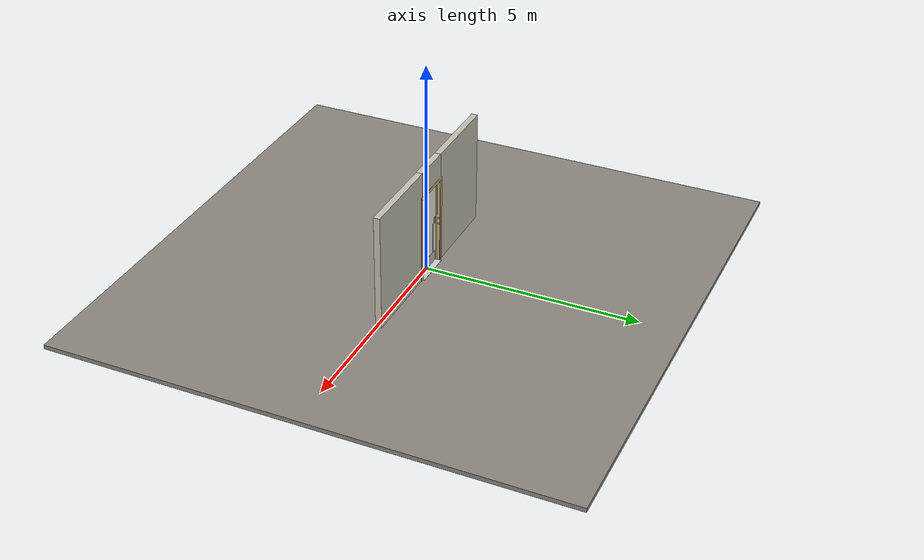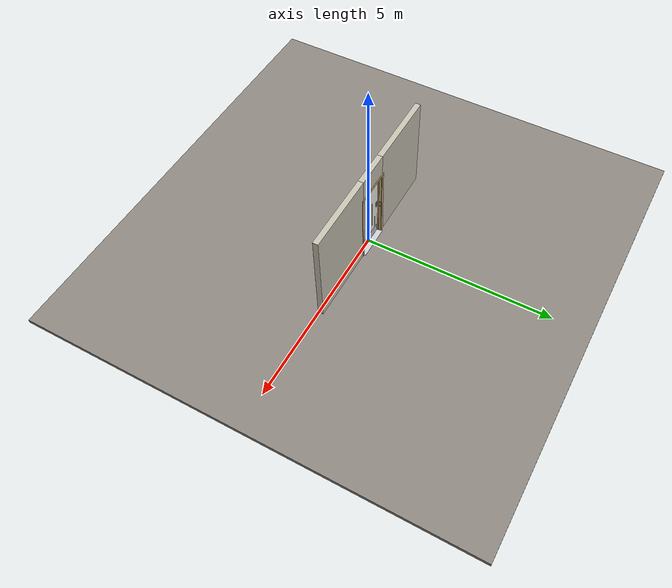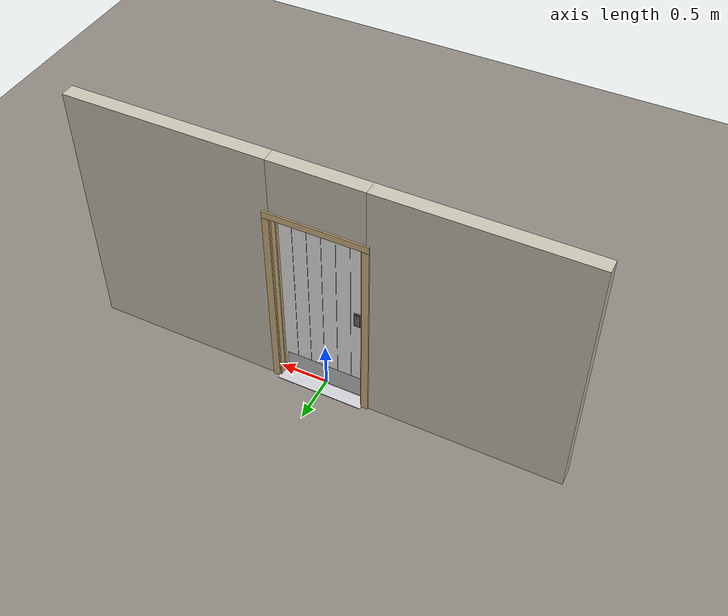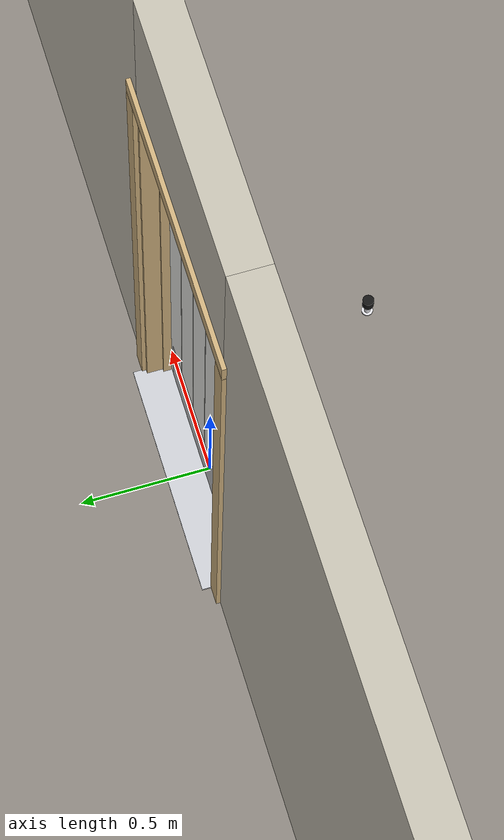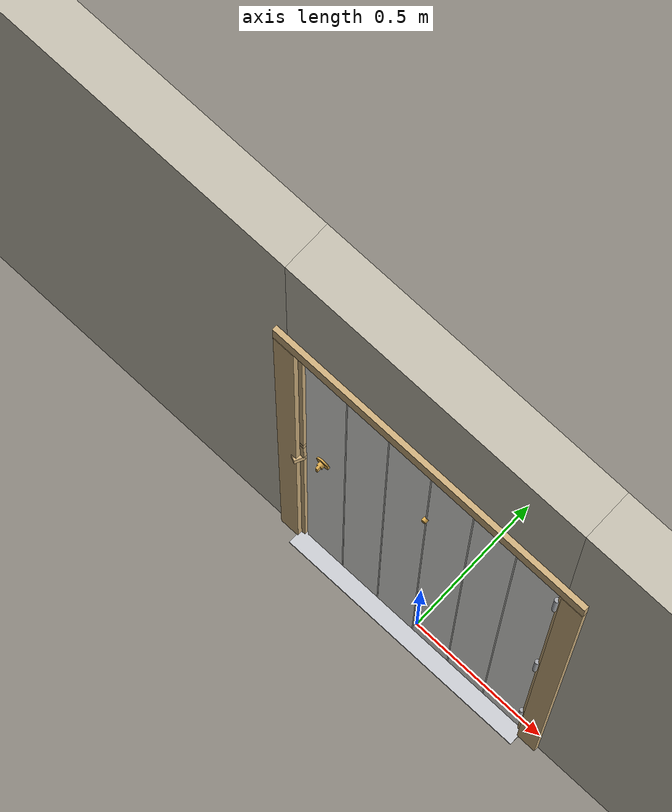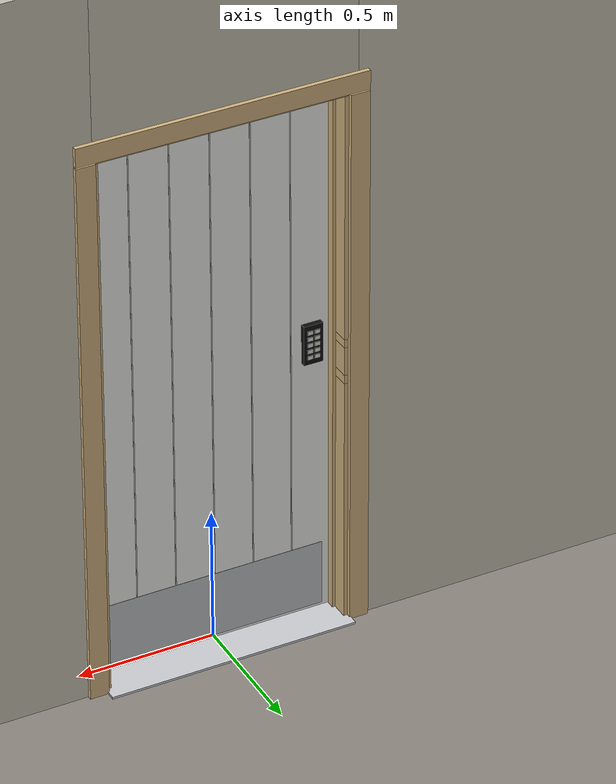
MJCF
<?xml version="1.0" ?>
<mujoco model="db0955_swing_single_full">
  <compiler angle="radian" meshdir="../../hardware" texturedir="../../textures" autolimits="true" inertiafromgeom="false"/>
  <option timestep="0.002" integrator="implicitfast" cone="elliptic" impratio="10" noslip_iterations="3">
    <flag multiccd="enable"/>
  </option>
  <size memory="16M"/>
  <default>
    <geom condim="4" solref="0.005 1" solimp="0.95 0.99 0.001"/>
    <joint solreflimit="0.005 1" solimplimit="0.95 0.99 0.001"/>
    <tendon solreflimit="0.005 1"/>
    <equality solref="0.002 1"/>
  </default>
  <visual>
    <headlight ambient="0.4 0.4 0.4" diffuse="0.7 0.7 0.7" specular="0.2 0.2 0.2"/>
    <quality shadowsize="4096"/>
    <map znear="0.01" zfar="60"/>
  </visual>
  <asset>
    <mesh name="hinge_e22b26c0c1" file="hinge_e22b26c0c1.obj"/>
    <mesh name="hinge_jamb_e1d088f8dc" file="hinge_jamb_e1d088f8dc.obj"/>
    <mesh name="keypad_body_3b2d063948" file="keypad_body_3b2d063948.obj"/>
    <mesh name="peephole_f829311a59" file="peephole_f829311a59.obj"/>
    <mesh name="thumbturn_eb5c9899a3" file="thumbturn_eb5c9899a3.obj"/>
    <material name="mat_floor" rgba="0.55 0.53 0.5 1" specular="0.2" shininess="0.15" reflectance="0"/>
    <material name="mat_wall" rgba="0.78 0.76 0.7 1" specular="0.2" shininess="0.1" reflectance="0"/>
    <material name="mat_leaf" rgba="0.93 0.93 0.91 1" specular="0.2" shininess="0.6" reflectance="0"/>
    <material name="mat_leaf_brace" rgba="0.837 0.837 0.819 1" specular="0.2" shininess="0.2" reflectance="0"/>
    <material name="mat_hinge" rgba="0.65 0.66 0.68 1" specular="0.74" shininess="0.5" reflectance="0.36"/>
    <material name="mat_op_nickel_satin" rgba="0.72 0.7 0.66 1" specular="0.8" shininess="0.65" reflectance="0.4"/>
    <material name="mat_trim" rgba="0.85 0.66 0.3 1" specular="0.8" shininess="0.75" reflectance="0.4"/>
    <material name="mat_keypad" rgba="0.05 0.05 0.05 1" specular="0.38" shininess="0.3" reflectance="0.12"/>
    <material name="mat_key" rgba="0.85 0.85 0.82 1" specular="0.2" shininess="0.5" reflectance="0"/>
    <material name="mat_bolt" rgba="0.85 0.66 0.3 1" specular="0.8" shininess="0.75" reflectance="0.4"/>
    <material name="mat_deadbolt" rgba="0.85 0.66 0.3 1" specular="0.8" shininess="0.75" reflectance="0.4"/>
    <material name="mat_frame" rgba="0.82 0.7 0.5 1" specular="0.2" shininess="0.45" reflectance="0"/>
    <material name="mat_seal" rgba="0.1 0.1 0.1 1" specular="0.2" shininess="0.1" reflectance="0"/>
    <material name="mat_threshold" rgba="0.8 0.81 0.83 1" specular="0.8" shininess="0.6" reflectance="0.4"/>
    <material name="mat_kick" rgba="0.75 0.76 0.77 1" specular="0.8" shininess="0.65" reflectance="0.4"/>
    <material name="mat_peephole" rgba="0.85 0.66 0.3 1" specular="0.8" shininess="0.75" reflectance="0.4"/>
    <material name="mat_bumper_stop" rgba="0.08 0.08 0.08 1" specular="0.2" shininess="0.1" reflectance="0"/>
    <material name="mat_stop_base" rgba="0.9 0.9 0.92 1" specular="0.8" shininess="0.9" reflectance="0.4"/>
    <texture name="skybox" type="skybox" builtin="gradient" rgb1="0.6 0.7 0.85" rgb2="0.9 0.92 0.95" width="256" height="256"/>
  </asset>
  <worldbody>
    <light name="sun" pos="1.5 -2.5 4" dir="-0.3 0.5 -0.8" directional="true" diffuse="0.8 0.8 0.8" specular="0.3 0.3 0.3" castshadow="true"/>
    <light name="fill" pos="-1.5 2.5 3" dir="0.3 -0.5 -0.7" directional="true" diffuse="0.35 0.35 0.4" castshadow="false"/>
    <camera name="robot_view" pos="0 -2.498687 1.734312" xyaxes="1 0 0 0 0.26963 0.962964" fovy="52"/>
    <camera name="far_view" pos="0 2.585687 1.734312" xyaxes="-1 0 0 0 -0.26963 0.962964" fovy="52"/>
    <camera name="iso" pos="-1.932062 -2.091938 2.141063" xyaxes="0.741536 -0.670913 0 0.242917 0.268487 0.932151" fovy="46"/>
    <camera name="detail_handle" pos="-0.148 -0.7565 1.245" xyaxes="0.97561 0.219512 0 -0.070934 0.315262 0.94635" fovy="38"/>
    <geom name="floor" type="box" size="6 6 0.05" pos="0 0 -0.05" material="mat_floor" group="0" contype="1" conaffinity="1" friction="0.8 0.005 0.0001" density="2400"/>
    <geom name="wall_left" type="box" size="1.0075 0.0725 1.35" pos="-1.4925 0.0435 1.35" material="mat_wall" group="0" contype="1" conaffinity="1" friction="0.6 0.005 0.0001" density="800"/>
    <geom name="wall_right" type="box" size="1.0225 0.0725 1.35" pos="1.4775 0.0435 1.35" material="mat_wall" group="0" contype="1" conaffinity="1" friction="0.6 0.005 0.0001" density="800"/>
    <geom name="wall_header" type="box" size="0.47 0.0725 0.303" pos="-0.015 0.0435 2.397" material="mat_wall" group="0" contype="1" conaffinity="1" friction="0.6 0.005 0.0001" density="800"/>
    <geom name="hinge_0_jamb" type="mesh" mesh="hinge_jamb_e1d088f8dc" pos="0.433 -0.029 0.259" quat="0 0 1 0" material="mat_hinge" group="1" contype="0" conaffinity="0" density="7850"/>
    <geom name="hinge_1_jamb" type="mesh" mesh="hinge_jamb_e1d088f8dc" pos="0.433 -0.029 1.025" quat="0 0 1 0" material="mat_hinge" group="1" contype="0" conaffinity="0" density="7850"/>
    <geom name="hinge_2_jamb" type="mesh" mesh="hinge_jamb_e1d088f8dc" pos="0.433 -0.029 1.861" quat="0 0 1 0" material="mat_hinge" group="1" contype="0" conaffinity="0" density="7850"/>
    <geom name="leaf_deadbolt_strike_b" type="box" size="0.0155 0.003 0.0005" pos="-0.4355 0 1.0865" quat="0.5 0.5 0.5 0.5" material="mat_deadbolt" group="1" contype="0" conaffinity="0" density="7800"/>
    <geom name="leaf_deadbolt_strike_l" type="box" size="0.003 0.0155 0.0005" pos="-0.4355 -0.0125 1.105" quat="0.5 0.5 0.5 0.5" material="mat_deadbolt" group="1" contype="0" conaffinity="0" density="7800"/>
    <geom name="leaf_deadbolt_strike_t" type="box" size="0.0155 0.003 0.0005" pos="-0.4355 0 1.1235" quat="0.5 0.5 0.5 0.5" material="mat_deadbolt" group="1" contype="0" conaffinity="0" density="7800"/>
    <geom name="leaf_deadbolt_strike_r" type="box" size="0.003 0.0155 0.0005" pos="-0.4355 0.0125 1.105" quat="0.5 0.5 0.5 0.5" material="mat_deadbolt" group="1" contype="0" conaffinity="0" density="7800"/>
    <geom name="jamb_hinge" type="box" size="0.0095 0.0725 1.0225" pos="0.4455 0.0435 1.0225" material="mat_frame" group="0" contype="1" conaffinity="1" friction="0.6 0.005 0.0001" density="400"/>
    <geom name="strike_965_wall_n" type="box" size="0.0245 0.054075 0.0167" pos="-0.4605 0.061925 0.965" material="mat_frame" group="0" contype="1" conaffinity="1" friction="0.6 0.005 0.0001" density="400"/>
    <geom name="strike_965_wall_p" type="box" size="0.0245 0.008 0.0167" pos="-0.4605 -0.01585 0.965" material="mat_frame" group="0" contype="1" conaffinity="1" friction="0.6 0.005 0.0001" density="400"/>
    <geom name="strike_965_ramp" type="box" size="0.0245 0.01649 0.0167" pos="-0.465136 -0.028673 0.965" quat="0.977148 0 0 -0.212558" material="mat_frame" group="0" contype="1" conaffinity="1" friction="0.12 0.005 0.0001" density="400"/>
    <geom name="strike_965_back" type="box" size="0.01615 0.00785 0.0167" pos="-0.46885 0 0.965" material="mat_frame" group="0" contype="1" conaffinity="1" friction="0.6 0.005 0.0001" density="400"/>
    <geom name="strike_1105_wall_n" type="box" size="0.0245 0.05325 0.0155" pos="-0.4605 0.06275 1.105" material="mat_frame" group="0" contype="1" conaffinity="1" friction="0.6 0.005 0.0001" density="400"/>
    <geom name="strike_1105_wall_p" type="box" size="0.0245 0.00975 0.0155" pos="-0.4605 -0.01925 1.105" material="mat_frame" group="0" contype="1" conaffinity="1" friction="0.6 0.005 0.0001" density="400"/>
    <geom name="strike_1105_back" type="box" size="0.0098 0.0095 0.0155" pos="-0.4752 0 1.105" material="mat_frame" group="0" contype="1" conaffinity="1" friction="0.6 0.005 0.0001" density="400"/>
    <geom name="jamb_strike_0" type="box" size="0.0245 0.0725 0.47415" pos="-0.4605 0.0435 0.47415" material="mat_frame" group="0" contype="1" conaffinity="1" friction="0.6 0.005 0.0001" density="400"/>
    <geom name="jamb_strike_1" type="box" size="0.0245 0.0725 0.0539" pos="-0.4605 0.0435 1.0356" material="mat_frame" group="0" contype="1" conaffinity="1" friction="0.6 0.005 0.0001" density="400"/>
    <geom name="jamb_strike_2" type="box" size="0.0245 0.0725 0.46225" pos="-0.4605 0.0435 1.58275" material="mat_frame" group="0" contype="1" conaffinity="1" friction="0.6 0.005 0.0001" density="400"/>
    <geom name="jamb_head" type="box" size="0.47 0.0725 0.0095" pos="-0.015 0.0435 2.0545" material="mat_frame" group="0" contype="1" conaffinity="1" friction="0.6 0.005 0.0001" density="400"/>
    <geom name="head_stud" type="box" size="0.47 0.0725 0.015" pos="-0.015 0.0435 2.079" material="mat_wall" group="0" contype="1" conaffinity="1" friction="0.6 0.005 0.0001" density="500"/>
    <geom name="stop_hinge" type="box" size="0.0055 0.016 1.0225" pos="0.4305 0.0385 1.0225" material="mat_frame" group="0" contype="1" conaffinity="1" friction="0.6 0.005 0.0001" density="400"/>
    <geom name="stop_strike" type="box" size="0.0055 0.016 1.0225" pos="-0.4305 0.0385 1.0225" material="mat_frame" group="0" contype="1" conaffinity="1" friction="0.6 0.005 0.0001" density="400"/>
    <geom name="stop_head" type="box" size="0.436 0.016 0.0055" pos="0 0.0385 2.0395" material="mat_frame" group="0" contype="1" conaffinity="1" friction="0.6 0.005 0.0001" density="400"/>
    <geom name="seal_hinge" type="box" size="0.004 0.004 1.0225" pos="0.433 0.026 1.0225" material="mat_seal" group="1" contype="0" conaffinity="0" density="1100"/>
    <geom name="seal_strike" type="box" size="0.004 0.004 1.0225" pos="-0.433 0.026 1.0225" material="mat_seal" group="1" contype="0" conaffinity="0" density="1100"/>
    <geom name="seal_head" type="box" size="0.416 0.004 0.008" pos="0 0.026 2.033" material="mat_seal" group="1" contype="0" conaffinity="0" density="1100"/>
    <geom name="casing_l_n" type="box" size="0.035 0.008 1.032" pos="-0.485 -0.037 1.0225" material="mat_frame" group="2" contype="0" conaffinity="0" density="400"/>
    <geom name="casing_r_n" type="box" size="0.035 0.008 1.032" pos="0.485 -0.037 1.0225" material="mat_frame" group="2" contype="0" conaffinity="0" density="400"/>
    <geom name="casing_h_n" type="box" size="0.52 0.008 0.035" pos="0 -0.037 2.094" material="mat_frame" group="2" contype="0" conaffinity="0" density="400"/>
    <geom name="casing_l_p" type="box" size="0.035 0.008 1.032" pos="-0.485 0.124 1.0225" material="mat_frame" group="2" contype="0" conaffinity="0" density="400"/>
    <geom name="casing_r_p" type="box" size="0.035 0.008 1.032" pos="0.485 0.124 1.0225" material="mat_frame" group="2" contype="0" conaffinity="0" density="400"/>
    <geom name="casing_h_p" type="box" size="0.52 0.008 0.035" pos="0 0.124 2.094" material="mat_frame" group="2" contype="0" conaffinity="0" density="400"/>
    <geom name="threshold" type="box" size="0.455 0.1225 0.004" pos="0 0.0435 0.004" material="mat_threshold" group="0" contype="1" conaffinity="1" friction="0.6 0.005 0.0001" density="2700"/>
    <geom name="door_stop_base" type="cylinder" size="0.022 0.003" pos="0.45 -0.7634 0.003" material="mat_stop_base" group="0" contype="1" conaffinity="1" friction="0.6 0.005 0.0001" density="7850"/>
    <geom name="door_stop_post" type="cylinder" size="0.012 0.0245" pos="0.45 -0.7634 0.0305" material="mat_stop_base" group="0" contype="1" conaffinity="1" friction="0.6 0.005 0.0001" density="7850"/>
    <geom name="door_stop_bumper" type="cylinder" size="0.022 0.02" pos="0.45 -0.7634 0.075" material="mat_bumper_stop" group="0" contype="1" conaffinity="1" friction="0.6 0.005 0.0001" density="1100"/>
    <site name="approach_point" pos="0 -1.5 0" quat="1 0 0 0" size="0.05" rgba="0.2 0.9 0.2 0.5" group="4"/>
    <site name="goal_point" pos="0 1.5 0" quat="1 0 0 0" size="0.05" rgba="0.2 0.9 0.2 0.5" group="4"/>
    <site name="door_plane_center" pos="0 0 1.0225" quat="1 0 0 0" size="0.02" rgba="0.2 0.9 0.2 0.5" group="4"/>
    <body name="leaf" pos="0.436 0 0">
      <inertial pos="-0.428693 0.002455 0.932249" mass="23.827729" quat="0.502583 -0.496592 0.500854 0.499952" diaginertia="1.58775927 9.029137813 10.606908292"/>
      <joint name="leaf_hinge" type="hinge" axis="0 0 1" pos="-0.003 -0.029 0" limited="true" range="0 1.570796" solreflimit="0.02 1" damping="0.254501" frictionloss="1.378515" armature="0.02"/>
      <geom name="leaf_slab" type="box" size="0.432 0.022 1.016" pos="-0.435 0 1.025" material="mat_leaf" group="0" contype="1" conaffinity="1" friction="0.4 0.005 0.0001" density="1"/>
      <geom name="leaf_plank_gap_1" type="box" size="0.002 0.023 1.006" pos="-0.147 0 1.025" material="mat_leaf_brace" group="1" contype="0" conaffinity="0" density="1"/>
      <geom name="leaf_plank_gap_2" type="box" size="0.002 0.023 1.006" pos="-0.291 0 1.025" material="mat_leaf_brace" group="1" contype="0" conaffinity="0" density="1"/>
      <geom name="leaf_plank_gap_3" type="box" size="0.002 0.023 1.006" pos="-0.435 0 1.025" material="mat_leaf_brace" group="1" contype="0" conaffinity="0" density="1"/>
      <geom name="leaf_plank_gap_4" type="box" size="0.002 0.023 1.006" pos="-0.579 0 1.025" material="mat_leaf_brace" group="1" contype="0" conaffinity="0" density="1"/>
      <geom name="leaf_plank_gap_5" type="box" size="0.002 0.023 1.006" pos="-0.723 0 1.025" material="mat_leaf_brace" group="1" contype="0" conaffinity="0" density="1"/>
      <geom name="hinge_0" type="mesh" mesh="hinge_e22b26c0c1" pos="-0.003 -0.029 0.259" quat="0 0 1 0" material="mat_hinge" group="1" contype="0" conaffinity="0" density="7850"/>
      <geom name="hinge_1" type="mesh" mesh="hinge_e22b26c0c1" pos="-0.003 -0.029 1.025" quat="0 0 1 0" material="mat_hinge" group="1" contype="0" conaffinity="0" density="7850"/>
      <geom name="hinge_2" type="mesh" mesh="hinge_e22b26c0c1" pos="-0.003 -0.029 1.861" quat="0 0 1 0" material="mat_hinge" group="1" contype="0" conaffinity="0" density="7850"/>
      <geom name="leaf_keypad_body" type="mesh" mesh="keypad_body_3b2d063948" pos="-0.797 0.022 1.085" quat="0 0 0.707107 0.707107" material="mat_keypad" group="0" contype="1" conaffinity="1" friction="0.6 0.005 0.0001" density="2000"/>
      <geom name="leaf_latch_bolt_faceplate" type="box" size="0.0006 0.01235 0.0267" pos="-0.8664 0 0.965" material="mat_bolt" group="1" contype="0" conaffinity="0" density="8500"/>
      <geom name="leaf_deadbolt_faceplate" type="box" size="0.0006 0.014 0.0245" pos="-0.8664 0 1.105" material="mat_deadbolt" group="1" contype="0" conaffinity="0" density="8500"/>
      <geom name="kick_plate_p" type="box" size="0.402 0.0008 0.125" pos="-0.435 0.0228 0.144" material="mat_kick" group="2" contype="0" conaffinity="0" density="7900"/>
      <geom name="peephole" type="mesh" mesh="peephole_f829311a59" pos="-0.435 -0.022 1.509" quat="0 0 -0.707107 0.707107" material="mat_peephole" group="2" contype="0" conaffinity="0" density="8500"/>
      <site name="leaf_edge_mid" pos="-0.867 0 1.016" quat="1 0 0 0" size="0.02" rgba="0.2 0.9 0.2 0.5" group="4"/>
      <body name="leaf_handle" pos="-0.797 0 0.965">
        <inertial pos="0 0 0" mass="0.037288" quat="0.5 0.5 0.5 0.5" diaginertia="0.000000671 0.000005817 0.000005817"/>
        <joint name="leaf_handle_hinge" type="hinge" axis="0 1 0" limited="true" range="0 0.87" damping="0.141426" frictionloss="0.048" stiffness="0.5" springref="-0.5" armature="0.01"/>
        <geom name="leaf_handle_spindle" type="cylinder" size="0.006 0.021" pos="0 0 0" quat="0.707107 -0.707107 0 0" material="mat_op_nickel_satin" group="1" contype="0" conaffinity="0" density="7850"/>
      </body>
      <body name="leaf_keypad_key_1" pos="-0.784 0.042 1.133">
        <inertial pos="0 0.0015 0" mass="0.001008" quat="0 0 0.707107 0.707107" diaginertia="0.000000017 0.000000034 0.00000005"/>
        <joint name="leaf_keypad_key_1_slide" type="slide" axis="0 -1 0" limited="true" range="0 0.0015" damping="14" frictionloss="0.05" stiffness="1000" springref="-0.0015" armature="0.1"/>
        <geom name="leaf_keypad_key_1_geom" type="box" size="0.01 0.0015 0.007" pos="0 0.0015 0" material="mat_key" group="0" contype="1" conaffinity="1" friction="0.6 0.005 0.0001" density="1200"/>
        <site name="leaf_keypad_key_1_press" pos="0 0.005 0" quat="1 0 0 0" size="0.008" rgba="0.2 0.9 0.2 0.5" group="4"/>
      </body>
      <body name="leaf_keypad_key_2" pos="-0.81 0.042 1.133">
        <inertial pos="0 0.0015 0" mass="0.001008" quat="0 0 0.707107 0.707107" diaginertia="0.000000017 0.000000034 0.00000005"/>
        <joint name="leaf_keypad_key_2_slide" type="slide" axis="0 -1 0" limited="true" range="0 0.0015" damping="14" frictionloss="0.05" stiffness="1000" springref="-0.0015" armature="0.1"/>
        <geom name="leaf_keypad_key_2_geom" type="box" size="0.01 0.0015 0.007" pos="0 0.0015 0" material="mat_key" group="0" contype="1" conaffinity="1" friction="0.6 0.005 0.0001" density="1200"/>
        <site name="leaf_keypad_key_2_press" pos="0 0.005 0" quat="1 0 0 0" size="0.008" rgba="0.2 0.9 0.2 0.5" group="4"/>
      </body>
      <body name="leaf_keypad_key_3" pos="-0.784 0.042 1.109">
        <inertial pos="0 0.0015 0" mass="0.001008" quat="0 0 0.707107 0.707107" diaginertia="0.000000017 0.000000034 0.00000005"/>
        <joint name="leaf_keypad_key_3_slide" type="slide" axis="0 -1 0" limited="true" range="0 0.0015" damping="14" frictionloss="0.05" stiffness="1000" springref="-0.0015" armature="0.1"/>
        <geom name="leaf_keypad_key_3_geom" type="box" size="0.01 0.0015 0.007" pos="0 0.0015 0" material="mat_key" group="0" contype="1" conaffinity="1" friction="0.6 0.005 0.0001" density="1200"/>
        <site name="leaf_keypad_key_3_press" pos="0 0.005 0" quat="1 0 0 0" size="0.008" rgba="0.2 0.9 0.2 0.5" group="4"/>
      </body>
      <body name="leaf_keypad_key_4" pos="-0.81 0.042 1.109">
        <inertial pos="0 0.0015 0" mass="0.001008" quat="0 0 0.707107 0.707107" diaginertia="0.000000017 0.000000034 0.00000005"/>
        <joint name="leaf_keypad_key_4_slide" type="slide" axis="0 -1 0" limited="true" range="0 0.0015" damping="14" frictionloss="0.05" stiffness="1000" springref="-0.0015" armature="0.1"/>
        <geom name="leaf_keypad_key_4_geom" type="box" size="0.01 0.0015 0.007" pos="0 0.0015 0" material="mat_key" group="0" contype="1" conaffinity="1" friction="0.6 0.005 0.0001" density="1200"/>
        <site name="leaf_keypad_key_4_press" pos="0 0.005 0" quat="1 0 0 0" size="0.008" rgba="0.2 0.9 0.2 0.5" group="4"/>
      </body>
      <body name="leaf_keypad_key_5" pos="-0.784 0.042 1.085">
        <inertial pos="0 0.0015 0" mass="0.001008" quat="0 0 0.707107 0.707107" diaginertia="0.000000017 0.000000034 0.00000005"/>
        <joint name="leaf_keypad_key_5_slide" type="slide" axis="0 -1 0" limited="true" range="0 0.0015" damping="14" frictionloss="0.05" stiffness="1000" springref="-0.0015" armature="0.1"/>
        <geom name="leaf_keypad_key_5_geom" type="box" size="0.01 0.0015 0.007" pos="0 0.0015 0" material="mat_key" group="0" contype="1" conaffinity="1" friction="0.6 0.005 0.0001" density="1200"/>
        <site name="leaf_keypad_key_5_press" pos="0 0.005 0" quat="1 0 0 0" size="0.008" rgba="0.2 0.9 0.2 0.5" group="4"/>
      </body>
      <body name="leaf_keypad_key_6" pos="-0.81 0.042 1.085">
        <inertial pos="0 0.0015 0" mass="0.001008" quat="0 0 0.707107 0.707107" diaginertia="0.000000017 0.000000034 0.00000005"/>
        <joint name="leaf_keypad_key_6_slide" type="slide" axis="0 -1 0" limited="true" range="0 0.0015" damping="14" frictionloss="0.05" stiffness="1000" springref="-0.0015" armature="0.1"/>
        <geom name="leaf_keypad_key_6_geom" type="box" size="0.01 0.0015 0.007" pos="0 0.0015 0" material="mat_key" group="0" contype="1" conaffinity="1" friction="0.6 0.005 0.0001" density="1200"/>
        <site name="leaf_keypad_key_6_press" pos="0 0.005 0" quat="1 0 0 0" size="0.008" rgba="0.2 0.9 0.2 0.5" group="4"/>
      </body>
      <body name="leaf_keypad_key_7" pos="-0.784 0.042 1.061">
        <inertial pos="0 0.0015 0" mass="0.001008" quat="0 0 0.707107 0.707107" diaginertia="0.000000017 0.000000034 0.00000005"/>
        <joint name="leaf_keypad_key_7_slide" type="slide" axis="0 -1 0" limited="true" range="0 0.0015" damping="14" frictionloss="0.05" stiffness="1000" springref="-0.0015" armature="0.1"/>
        <geom name="leaf_keypad_key_7_geom" type="box" size="0.01 0.0015 0.007" pos="0 0.0015 0" material="mat_key" group="0" contype="1" conaffinity="1" friction="0.6 0.005 0.0001" density="1200"/>
        <site name="leaf_keypad_key_7_press" pos="0 0.005 0" quat="1 0 0 0" size="0.008" rgba="0.2 0.9 0.2 0.5" group="4"/>
      </body>
      <body name="leaf_keypad_key_8" pos="-0.81 0.042 1.061">
        <inertial pos="0 0.0015 0" mass="0.001008" quat="0 0 0.707107 0.707107" diaginertia="0.000000017 0.000000034 0.00000005"/>
        <joint name="leaf_keypad_key_8_slide" type="slide" axis="0 -1 0" limited="true" range="0 0.0015" damping="14" frictionloss="0.05" stiffness="1000" springref="-0.0015" armature="0.1"/>
        <geom name="leaf_keypad_key_8_geom" type="box" size="0.01 0.0015 0.007" pos="0 0.0015 0" material="mat_key" group="0" contype="1" conaffinity="1" friction="0.6 0.005 0.0001" density="1200"/>
        <site name="leaf_keypad_key_8_press" pos="0 0.005 0" quat="1 0 0 0" size="0.008" rgba="0.2 0.9 0.2 0.5" group="4"/>
      </body>
      <body name="leaf_keypad_key_9" pos="-0.784 0.042 1.037">
        <inertial pos="0 0.0015 0" mass="0.001008" quat="0 0 0.707107 0.707107" diaginertia="0.000000017 0.000000034 0.00000005"/>
        <joint name="leaf_keypad_key_9_slide" type="slide" axis="0 -1 0" limited="true" range="0 0.0015" damping="14" frictionloss="0.05" stiffness="1000" springref="-0.0015" armature="0.1"/>
        <geom name="leaf_keypad_key_9_geom" type="box" size="0.01 0.0015 0.007" pos="0 0.0015 0" material="mat_key" group="0" contype="1" conaffinity="1" friction="0.6 0.005 0.0001" density="1200"/>
        <site name="leaf_keypad_key_9_press" pos="0 0.005 0" quat="1 0 0 0" size="0.008" rgba="0.2 0.9 0.2 0.5" group="4"/>
      </body>
      <body name="leaf_keypad_key_0" pos="-0.81 0.042 1.037">
        <inertial pos="0 0.0015 0" mass="0.001008" quat="0 0 0.707107 0.707107" diaginertia="0.000000017 0.000000034 0.00000005"/>
        <joint name="leaf_keypad_key_0_slide" type="slide" axis="0 -1 0" limited="true" range="0 0.0015" damping="14" frictionloss="0.05" stiffness="1000" springref="-0.0015" armature="0.1"/>
        <geom name="leaf_keypad_key_0_geom" type="box" size="0.01 0.0015 0.007" pos="0 0.0015 0" material="mat_key" group="0" contype="1" conaffinity="1" friction="0.6 0.005 0.0001" density="1200"/>
        <site name="leaf_keypad_key_0_press" pos="0 0.005 0" quat="1 0 0 0" size="0.008" rgba="0.2 0.9 0.2 0.5" group="4"/>
      </body>
      <body name="leaf_latch_bolt" pos="-0.867 0 0.965">
        <inertial pos="0.00865 0 0" mass="0.041419" quat="0.92388 0.382683 0 0" diaginertia="0.000000798 0.000005598 0.000005598"/>
        <joint name="leaf_latch_bolt_slide" type="slide" axis="1 0 0" limited="true" range="0 0.0127" damping="2" frictionloss="0.3" stiffness="300" springref="-0.008333" armature="0.1"/>
        <geom name="leaf_latch_bolt_capsule" type="capsule" size="0.00635 0.015" pos="0.00865 0 0" quat="0.707107 0 -0.707107 0" material="mat_bolt" group="0" contype="1" conaffinity="1" friction="0.2 0.005 0.0001" density="8500"/>
      </body>
      <body name="leaf_deadbolt" pos="-0.867 0 1.105">
        <inertial pos="0.0023 0 0" mass="0.18836" quat="0 0 0.707107 0.707107" diaginertia="0.000013829 0.000052194 0.000057986"/>
        <joint name="leaf_deadbolt_slide" type="slide" axis="1 0 0" limited="true" range="0 0.0254" damping="5" frictionloss="1.5" armature="0.1"/>
        <geom name="leaf_deadbolt_box" type="box" size="0.0277 0.008 0.0125" pos="0.0023 0 0" material="mat_deadbolt" group="0" contype="1" conaffinity="1" friction="0.3 0.005 0.0001" density="8500"/>
      </body>
      <body name="leaf_deadbolt_thumbturn" pos="-0.802 -0.022 1.105">
        <inertial pos="0 -0.012928 0" mass="0.178946" quat="0.5 0.5 0.5 0.5" diaginertia="0.000026045 0.000026215 0.000032438"/>
        <joint name="leaf_deadbolt_thumbturn_hinge" type="hinge" axis="0 1 0" limited="true" range="0 1.5708" damping="0.05" frictionloss="0.3" armature="0.005"/>
        <geom name="leaf_deadbolt_thumbturn_mesh" type="mesh" mesh="thumbturn_eb5c9899a3" pos="0 0 0" quat="0 0 -0.707107 0.707107" material="mat_deadbolt" group="0" contype="1" conaffinity="1" friction="0.6 0.005 0.0001" density="7100"/>
        <geom name="leaf_deadbolt_thumbturn_col" type="box" size="0.006 0.012 0.016" pos="0 -0.02 0" material="mat_deadbolt" group="3" contype="1" conaffinity="1" rgba="0.8 0.3 0.3 0.25" friction="0.6 0.005 0.0001" density="7100"/>
      </body>
    </body>
  </worldbody>
  <tendon>
    <fixed name="leaf_latch_bolt_coupling" limited="true" range="0 10">
      <joint joint="leaf_latch_bolt_slide" coef="1"/>
      <joint joint="leaf_handle_hinge" coef="-0.015679"/>
    </fixed>
  </tendon>
  <equality>
    <joint name="leaf_deadbolt_couple" joint1="leaf_deadbolt_slide" joint2="leaf_deadbolt_thumbturn_hinge" polycoef="0 0.01617 0 0 0" active="true"/>
  </equality>
  <contact>
    <exclude body1="leaf_deadbolt" body2="leaf_deadbolt_thumbturn"/>
  </contact>
  <sensor>
    <jointpos name="leaf_hinge_pos" joint="leaf_hinge"/>
    <jointvel name="leaf_hinge_vel" joint="leaf_hinge"/>
    <jointpos name="leaf_handle_hinge_pos" joint="leaf_handle_hinge"/>
    <jointvel name="leaf_handle_hinge_vel" joint="leaf_handle_hinge"/>
    <jointpos name="leaf_keypad_key_1_slide_pos" joint="leaf_keypad_key_1_slide"/>
    <jointvel name="leaf_keypad_key_1_slide_vel" joint="leaf_keypad_key_1_slide"/>
    <jointpos name="leaf_keypad_key_2_slide_pos" joint="leaf_keypad_key_2_slide"/>
    <jointvel name="leaf_keypad_key_2_slide_vel" joint="leaf_keypad_key_2_slide"/>
    <jointpos name="leaf_keypad_key_3_slide_pos" joint="leaf_keypad_key_3_slide"/>
    <jointvel name="leaf_keypad_key_3_slide_vel" joint="leaf_keypad_key_3_slide"/>
    <jointpos name="leaf_keypad_key_4_slide_pos" joint="leaf_keypad_key_4_slide"/>
    <jointvel name="leaf_keypad_key_4_slide_vel" joint="leaf_keypad_key_4_slide"/>
    <jointpos name="leaf_keypad_key_5_slide_pos" joint="leaf_keypad_key_5_slide"/>
    <jointvel name="leaf_keypad_key_5_slide_vel" joint="leaf_keypad_key_5_slide"/>
    <jointpos name="leaf_keypad_key_6_slide_pos" joint="leaf_keypad_key_6_slide"/>
    <jointvel name="leaf_keypad_key_6_slide_vel" joint="leaf_keypad_key_6_slide"/>
    <jointpos name="leaf_keypad_key_7_slide_pos" joint="leaf_keypad_key_7_slide"/>
    <jointvel name="leaf_keypad_key_7_slide_vel" joint="leaf_keypad_key_7_slide"/>
    <jointpos name="leaf_keypad_key_8_slide_pos" joint="leaf_keypad_key_8_slide"/>
    <jointvel name="leaf_keypad_key_8_slide_vel" joint="leaf_keypad_key_8_slide"/>
    <jointpos name="leaf_keypad_key_9_slide_pos" joint="leaf_keypad_key_9_slide"/>
    <jointvel name="leaf_keypad_key_9_slide_vel" joint="leaf_keypad_key_9_slide"/>
    <jointpos name="leaf_keypad_key_0_slide_pos" joint="leaf_keypad_key_0_slide"/>
    <jointvel name="leaf_keypad_key_0_slide_vel" joint="leaf_keypad_key_0_slide"/>
    <jointpos name="leaf_latch_bolt_slide_pos" joint="leaf_latch_bolt_slide"/>
    <jointvel name="leaf_latch_bolt_slide_vel" joint="leaf_latch_bolt_slide"/>
    <jointpos name="leaf_deadbolt_slide_pos" joint="leaf_deadbolt_slide"/>
    <jointvel name="leaf_deadbolt_slide_vel" joint="leaf_deadbolt_slide"/>
    <jointpos name="leaf_deadbolt_thumbturn_hinge_pos" joint="leaf_deadbolt_thumbturn_hinge"/>
    <jointvel name="leaf_deadbolt_thumbturn_hinge_vel" joint="leaf_deadbolt_thumbturn_hinge"/>
  </sensor>
</mujoco>
